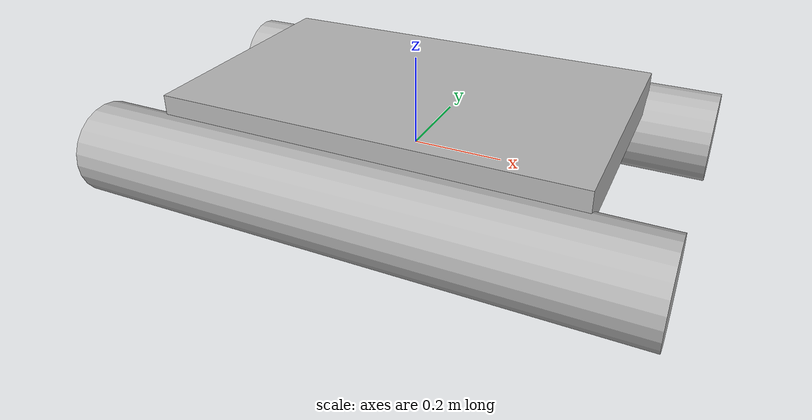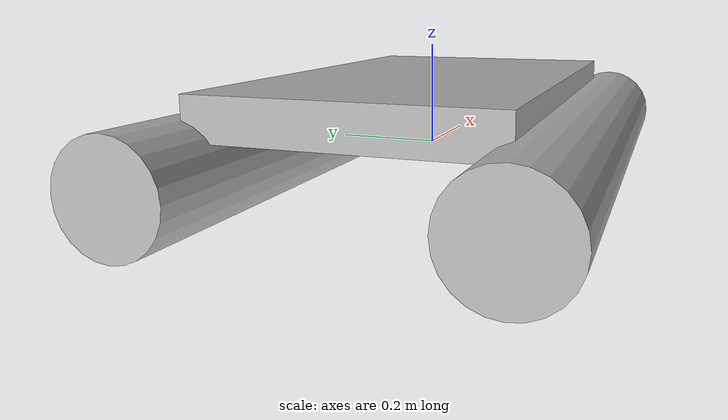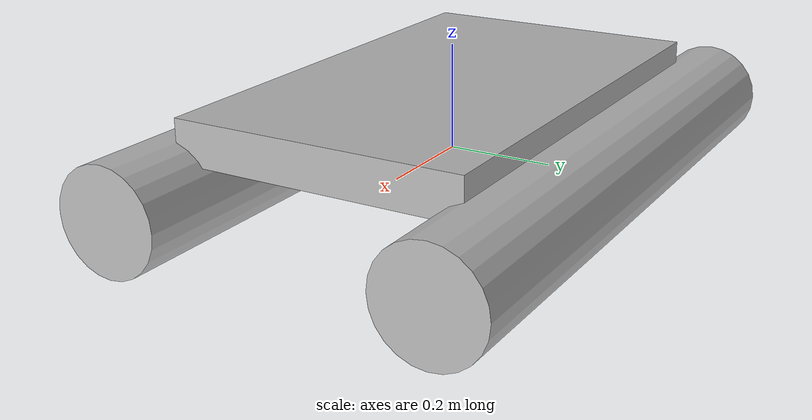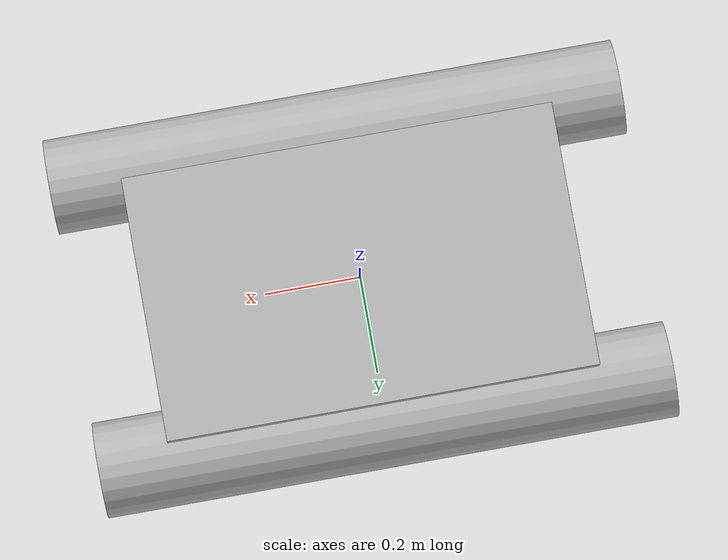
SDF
<?xml version="1.0" ?>
<sdf version="1.9">
  <model name="simple_usv">
    <pose>0 0 0 0 0 0</pose>
    <static>false</static>

    <link name="base_link">
      <inertial>
        <pose>0 0 0.05 0 0 0</pose>
        <mass>25.0</mass>
        <inertia>
          <ixx>1.5</ixx>
          <ixy>0</ixy>
          <ixz>0</ixz>
          <iyy>4.0</iyy>
          <iyz>0</iyz>
          <izz>5.0</izz>
        </inertia>
      </inertial>

      <!-- Left hull -->
      <collision name="left_hull_collision">
        <pose>0 0.30 0 0 1.5708 0</pose>
        <geometry>
          <cylinder>
            <radius>0.10</radius>
            <length>1.20</length>
          </cylinder>
        </geometry>
      </collision>

      <visual name="left_hull_visual">
        <pose>0 0.30 0 0 1.5708 0</pose>
        <geometry>
          <cylinder>
            <radius>0.10</radius>
            <length>1.20</length>
          </cylinder>
        </geometry>
      </visual>

      <!-- Right hull -->
      <collision name="right_hull_collision">
        <pose>0 -0.30 0 0 1.5708 0</pose>
        <geometry>
          <cylinder>
            <radius>0.10</radius>
            <length>1.20</length>
          </cylinder>
        </geometry>
      </collision>

      <visual name="right_hull_visual">
        <pose>0 -0.30 0 0 1.5708 0</pose>
        <geometry>
          <cylinder>
            <radius>0.10</radius>
            <length>1.20</length>
          </cylinder>
        </geometry>
      </visual>

      <!-- Deck -->
      <collision name="deck_collision">
        <pose>0 0 0.10 0 0 0</pose>
        <geometry>
          <box>
            <size>0.9 0.55 0.08</size>
          </box>
        </geometry>
      </collision>

      <visual name="deck_visual">
        <pose>0 0 0.10 0 0 0</pose>
        <geometry>
          <box>
            <size>0.9 0.55 0.08</size>
          </box>
        </geometry>
      </visual>

      <!-- Simple buoyancy collision volume -->
      <collision name="buoyancy_collision">
        <pose>0 0 0.02 0 0 0</pose>
        <geometry>
          <box>
            <size>1.10 0.65 0.12</size>
          </box>
        </geometry>
      </collision>

      <!-- IMU -->
      <sensor name="imu_sensor" type="imu">
        <always_on>1</always_on>
        <update_rate>200.0</update_rate>
        <topic>/model/simple_usv/imu</topic>
      </sensor>
    </link>

    <!-- Camera mount -->
    <link name="camera_mount_link">
      <pose relative_to="base_link">0.20 0 0.28 0 0 0</pose>
      <inertial>
        <mass>0.0001</mass>
        <inertia>
          <ixx>0.0001</ixx>
          <ixy>0</ixy>
          <ixz>0</ixz>
          <iyy>0.0001</iyy>
          <iyz>0</iyz>
          <izz>0.0001</izz>
        </inertia>
      </inertial>
    </link>

    <joint name="camera_mount_joint" type="fixed">
      <parent>base_link</parent>
      <child>camera_mount_link</child>
    </joint>

    <!-- Camera link -->
    <link name="camera_link">
      <pose relative_to="camera_mount_link">0 0 0 0 0 0</pose>
      <inertial>
        <mass>0.0001</mass>
        <inertia>
          <ixx>0.0001</ixx>
          <ixy>0</ixy>
          <ixz>0</ixz>
          <iyy>0.0001</iyy>
          <iyz>0</iyz>
          <izz>0.0001</izz>
        </inertia>
      </inertial>

      <sensor name="front_camera" type="camera">
        <update_rate>30</update_rate>
        <visualize>true</visualize>
        <always_on>1</always_on>
        <topic>/model/simple_usv/camera</topic>
        <camera>
          <horizontal_fov>1.05</horizontal_fov>
          <image>
            <width>1280</width>
            <height>720</height>
          </image>
          <clip>
            <near>0.1</near>
            <far>50.0</far>
          </clip>
        </camera>
      </sensor>
    </link>

    <joint name="camera_joint" type="fixed">
      <parent>camera_mount_link</parent>
      <child>camera_link</child>
    </joint>

    <!-- Left thruster -->
    <link name="thruster_left">
      <pose>-0.45 0.30 0 0 1.5708 0</pose>
      <visual name="thruster_left_visual">
        <geometry>
          <cylinder>
            <radius>0.04</radius>
            <length>0.10</length>
          </cylinder>
        </geometry>
      </visual>
      <inertial>
        <mass>0.05</mass>
        <inertia>
          <ixx>0.001</ixx>
          <ixy>0</ixy>
          <ixz>0</ixz>
          <iyy>0.001</iyy>
          <iyz>0</iyz>
          <izz>0.001</izz>
        </inertia>
      </inertial>
    </link>

    <joint name="thruster_left_joint" type="revolute">
      <parent>base_link</parent>
      <child>thruster_left</child>
      <axis>
        <xyz>0 0 -1</xyz>
      </axis>
    </joint>

    <!-- Right thruster -->
    <link name="thruster_right">
      <pose>-0.45 -0.30 0 0 1.5708 0</pose>
      <visual name="thruster_right_visual">
        <geometry>
          <cylinder>
            <radius>0.04</radius>
            <length>0.10</length>
          </cylinder>
        </geometry>
      </visual>
      <inertial>
        <mass>0.05</mass>
        <inertia>
          <ixx>0.001</ixx>
          <ixy>0</ixy>
          <ixz>0</ixz>
          <iyy>0.001</iyy>
          <iyz>0</iyz>
          <izz>0.001</izz>
        </inertia>
      </inertial>
    </link>

    <joint name="thruster_right_joint" type="revolute">
      <parent>base_link</parent>
      <child>thruster_right</child>
      <axis>
        <xyz>0 0 -1</xyz>
      </axis>
    </joint>

    <!-- Hydrodynamics -->
    <plugin
      filename="gz-sim-hydrodynamics-system"
      name="gz::sim::systems::Hydrodynamics">
      <link_name>base_link</link_name>
      <water_density>1000.0</water_density>

      <!-- Added mass -->
      <xDotU>0</xDotU>
      <yDotV>0</yDotV>
      <zDotW>0</zDotW>
      <kDotP>0</kDotP>
      <mDotQ>0</mDotQ>
      <nDotR>0</nDotR>

      <!-- Linear drag -->
      <xU>-8.0</xU>
      <yV>-20.0</yV>
      <zW>-30.0</zW>
      <kP>-2.0</kP>
      <mQ>-2.0</mQ>
      <nR>-8.0</nR>

      <!-- Quadratic drag -->
      <xUabsU>-20.0</xUabsU>
      <yVabsV>-40.0</yVabsV>
      <zWabsW>-60.0</zWabsW>
      <kPabsP>-3.0</kPabsP>
      <mQabsQ>-3.0</mQabsQ>
      <nRabsR>-10.0</nRabsR>
    </plugin>

    <!-- Thrusters -->
    <plugin
      filename="gz-sim-thruster-system"
      name="gz::sim::systems::Thruster">
      <namespace>simple_usv</namespace>
      <joint_name>thruster_left_joint</joint_name>
      <thrust_coefficient>0.02</thrust_coefficient>
      <fluid_density>1000.0</fluid_density>
      <propeller_diameter>0.1</propeller_diameter>
      <velocity_control>true</velocity_control>
      <use_angvel_cmd>False</use_angvel_cmd>
    </plugin>

    <plugin
      filename="gz-sim-thruster-system"
      name="gz::sim::systems::Thruster">
      <namespace>simple_usv</namespace>
      <joint_name>thruster_right_joint</joint_name>
      <thrust_coefficient>-0.02</thrust_coefficient>
      <fluid_density>1000.0</fluid_density>
      <propeller_diameter>0.1</propeller_diameter>
      <velocity_control>true</velocity_control>
      <use_angvel_cmd>False</use_angvel_cmd>
    </plugin>

    <!-- Odometry -->
    <plugin
      filename="gz-sim-odometry-publisher-system"
      name="gz::sim::systems::OdometryPublisher">
      <odom_frame>map</odom_frame>
      <robot_base_frame>base_link</robot_base_frame>
      <dimensions>3</dimensions>
      <odom_publish_frequency>50</odom_publish_frequency>
    </plugin>

    <!-- Joint states -->
    <plugin
      filename="gz-sim-joint-state-publisher-system"
      name="gz::sim::systems::JointStatePublisher">
    </plugin>

    <!-- IMU system -->
    <plugin
      filename="gz-sim-imu-system"
      name="gz::sim::systems::Imu">
    </plugin>

  </model>
</sdf>
